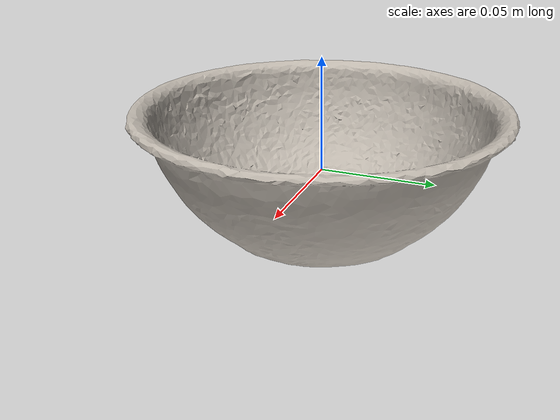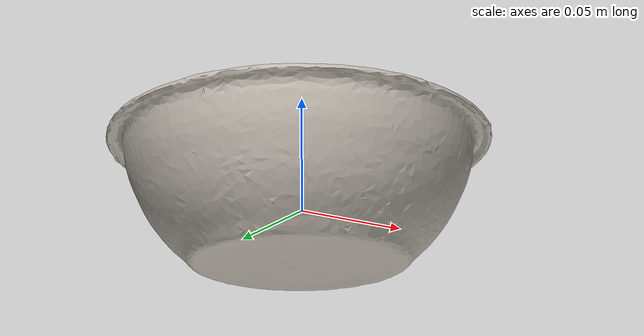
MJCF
<mujoco model="textured_centered">
  <default>
    <default class="visual">
      <geom group="2" type="mesh" contype="0" conaffinity="0"/>
    </default>
    <default class="collision">
      <geom group="3" type="mesh"/>
    </default>
  </default>
  <asset>
    <texture type="2d" name="texture_map" file="texture_map.png"/>
    <material name="material_0" texture="texture_map" specular="0.0" shininess="0.0"/>
    <mesh file="textured_centered.obj"/>
    <mesh file="textured_centered_collision_0.obj"/>
    <mesh file="textured_centered_collision_1.obj"/>
    <mesh file="textured_centered_collision_2.obj"/>
    <mesh file="textured_centered_collision_3.obj"/>
  </asset>
  <worldbody>
    <body name="textured_centered">
      <geom material="material_0" mesh="textured_centered" class="visual"/>
      <geom mesh="textured_centered_collision_0" rgba="0.8408527808838688 0.9047528662934952 0.3767657526011301 1" class="collision"/>
      <geom mesh="textured_centered_collision_1" rgba="0.778153648941064 0.9341707919500456 0.9871548574425446 1" class="collision"/>
      <geom mesh="textured_centered_collision_2" rgba="0.8465099915999491 0.9613040567051705 0.8673541311405516 1" class="collision"/>
      <geom mesh="textured_centered_collision_3" rgba="0.4348934104098503 0.9157765379383215 0.15595880409893914 1" class="collision"/>
    </body>
  </worldbody>
</mujoco>
